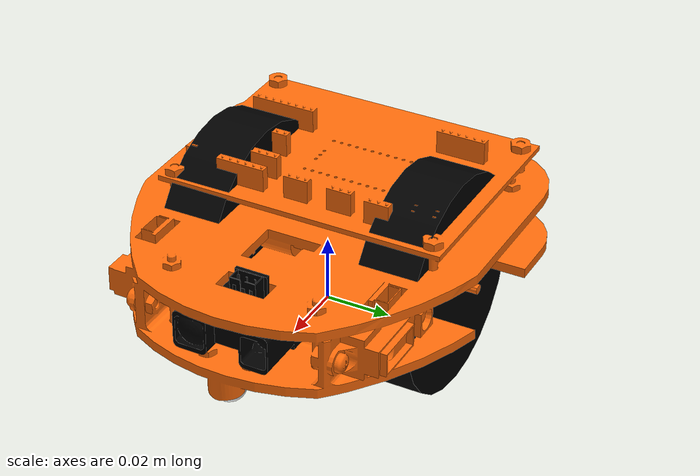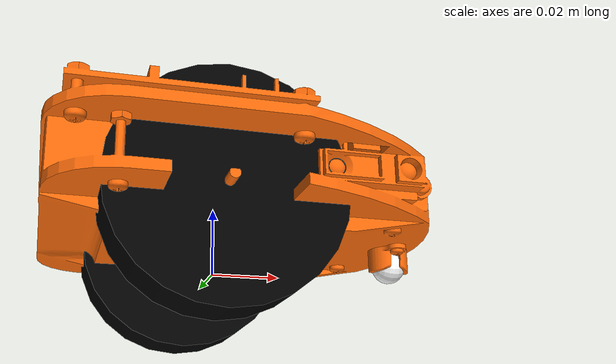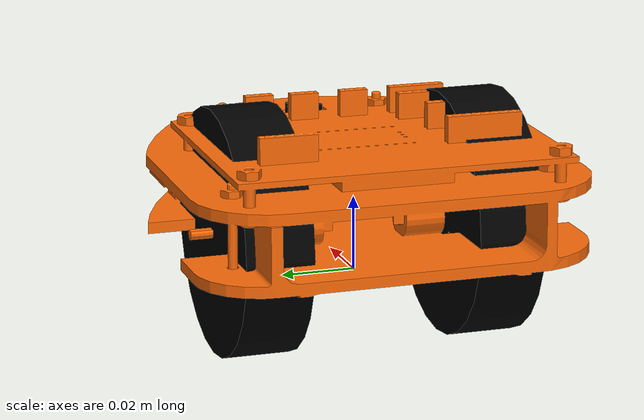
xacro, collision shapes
<?xml version="1.0"?>

<robot name="taurus" xmlns:xacro="http://ros.org/wiki/xacro">

    <!-- Include Gazebo Parameters -->
    <xacro:include filename="$(find taurus_description)/urdf/taurus_gazebo.xacro" />

    <!-- Include ros2_control Plugins -->
    <xacro:include filename="$(find taurus_description)/urdf/taurus_ros2_control.xacro" />
    <!-- Colors -->
    <material name="black">
        <color rgba="0.0 0.0 0.0 1.0"/>
    </material>

    <material name="white">
        <color rgba="1.0 1.0 1.0 1.0"/>
    </material>

    <material name="orange">
        <color rgba="${255/255} ${108/255} ${10/255} 1.0"/>
    </material>

    <!-- Links -->
    <link name="base_footprint"/>

    <link name="base_link">
        <inertial>
            <origin xyz="0.00275879340251001 -0.000160323414407668 0.0158295592625537" rpy="0 0 0" />
            <mass value="0.113" />
            <inertia ixx="6.15132942894087E-05" ixy="3.37534300204353E-07" ixz="-2.95632504344648E-07" iyy="8.46822261559733E-05" iyz="-9.68630964462554E-08" izz="0.000143380666972569" />
        </inertial>

        <visual>
            <origin xyz="0 0 0" rpy="0 0 0" />
            <geometry>
            <mesh filename="package://taurus_description/meshes/base_link.STL" />
            </geometry>
            <material name="orange"/>
        </visual>

        <collision>
            <origin xyz="0 0 0" rpy="0 0 0" />
            <geometry>
                <mesh filename="package://taurus_description/meshes/base_link.STL" />
            </geometry>
        </collision>
    </link>

    <joint name="base_joint" type="fixed">
        <parent link="base_footprint"/>
        <child link="base_link"/>
        <origin xyz="0.0 0.0 0.007" rpy="0 0 0"/>
    </joint>

    <link name="wheel_left_link">
        <inertial>
            <origin xyz="-2.99096858125819E-05 0.000104405542786706 0.0106748994421485" rpy="0 0 0" />
            <mass value="0.0193884068569417" />
            <inertia ixx="2.0510194557915E-04" ixy="-1.38176554484537E-04" ixz="-1.25876332418469E-04" iyy="2.06467928427853E-04" iyz="5.48385935622177E-04" izz="2.44092899915579E-04" />
        </inertial>

        <visual>
            <origin xyz="0 0 0" rpy="0 0 0" />
            <geometry>
                <mesh filename="package://taurus_description/meshes/wheel_left_tire.STL" />
            </geometry>
            <material name="black" />
        </visual>

        <collision>
            <origin xyz="0 0 0" rpy="0 0 0" />
            <geometry>
                <cylinder length="0.018" radius="0.033"/>
            </geometry>
        </collision>
    </link>

    <joint name="wheel_left_joint" type="continuous">
        <origin xyz="-0.0043278 0.031199 0.0080157" rpy="-1.5708 0.0038917 -0.0016425" />
        <parent link="base_link" />
        <child link="wheel_left_link" />
        <axis xyz="0 0 1" />
    </joint>

    <link name="wheel_right_link">
        <inertial>
            <origin xyz="5.80889775016746E-05 -8.73721543165756E-05 -0.010674936298826" rpy="0 0 0" />
            <mass value="0.0193884068569417" />
            <inertia ixx="2.0551514945078E-04" ixy="-6.42512948553551E-04" ixz="-3.05250616726642E-4" iyy="2.06054394462654E-04" iyz="4.59129190656125E-04" izz="2.44093230009149E-04" />
        </inertial>

        <visual>
            <origin xyz="0 0 0" rpy="0 0 0" />
            <geometry>
                <mesh filename="package://taurus_description/meshes/wheel_right_tire.STL" />
            </geometry>
            <material name="black" />
        </visual>

        <collision>
            <origin xyz="0 0 0" rpy="0 0 0" />
            <geometry>
                <cylinder length="0.018" radius="0.033"/>
            </geometry>
        </collision>
    </link>

    <joint name="wheel_right_joint" type="continuous">
        <origin xyz="-0.0043053 -0.0312 0.008035" rpy="-1.5708 0 0.00018716" />
        <parent link="base_link" />
        <child link="wheel_right_link" />
        <axis xyz="0 0 1" />
    </joint>

    <link name="caster_ball_link">
        <inertial>
            <origin xyz="3.4694E-18 -6.9389E-18 0" rpy="0 0 0" />
            <mass value="0.00042116" />
            <inertia ixx="3.6426E-09" ixy="-7.0682E-27" ixz="0" iyy="3.6426E-09" iyz="1.1632E-25" izz="3.6426E-09" />
        </inertial>

        <visual>
            <origin xyz="0 0 0" rpy="0 0 0" />
            <geometry>
                <mesh filename="package://taurus_description/meshes/caster_ball.STL" />
            </geometry>
            <material name="white"/>
        </visual>

        <collision>
            <origin xyz="0 0 0" rpy="0 0 0" />
            <geometry>
                <sphere radius="0.005" />
            </geometry>
        </collision>
    </link>

    <joint name="caster_ball_joint" type="fixed">
        <origin xyz="0.056407 -3.7223E-05 -0.0016971" rpy="-1.5862 0.02388 1.6283"/>
        <parent link="base_link" />
        <child link="caster_ball_link" />
    </joint>

    <link name="scan_link">
        <inertial>
            <origin xyz="0.00088546 -0.00014004 0.010058" rpy="0 0 0" />
            <mass value="0.0055715" />
            <inertia ixx="2.359E-07" ixy="-6.4604E-10" ixz="-3.628E-08" iyy="6.474E-07" iyz="-3.2589E-09" izz="5.6499E-07" />
        </inertial>

        <visual>
            <origin xyz="0 0 0" rpy="0 0 0" />
            <geometry>
                <mesh filename="package://taurus_description/meshes/scan_link.STL" />
            </geometry>
            <material name="black"/>
        </visual>

        <collision>
            <origin xyz="0 0 0" rpy="0 0 0" />
            <geometry>
                <mesh filename="package://taurus_description/meshes/scan_link.STL" />
            </geometry>
        </collision>
    </link>

    <joint name="scan_joint" type="fixed">
        <origin xyz="0.039818 0.00011898 0.015338" rpy="-1.5723 0.0004373 -1.5706" />
        <parent link="base_link" />
        <child link="scan_link" />
        <axis xyz="0 0 1" />
    </joint>

    <joint name="imu_joint" type="fixed">
        <parent link="base_link"/>
        <child link="imu_link"/>
        <origin xyz="0 0 0" rpy="0 0 0"/>
    </joint>

    <link name="imu_link"/>

</robot>
